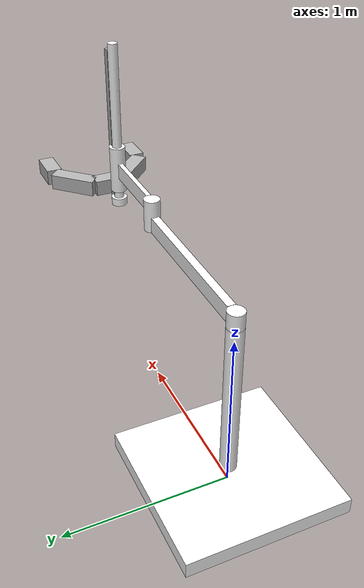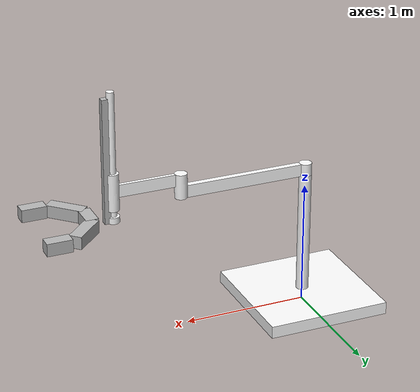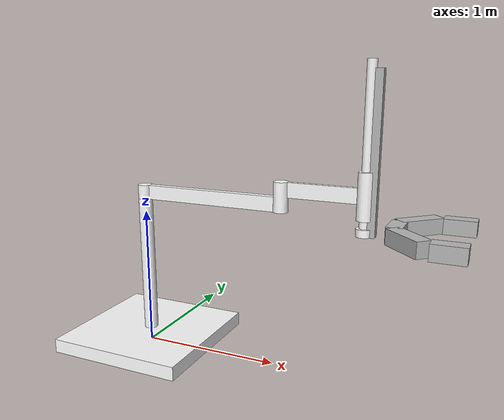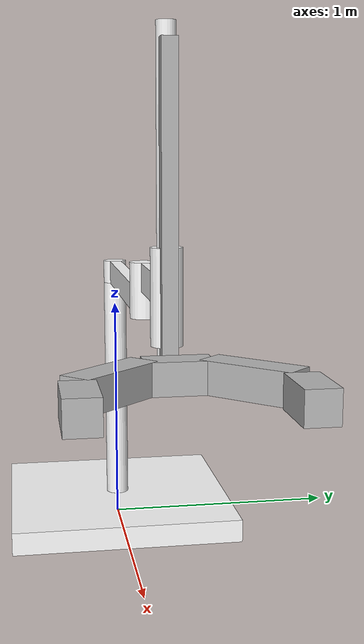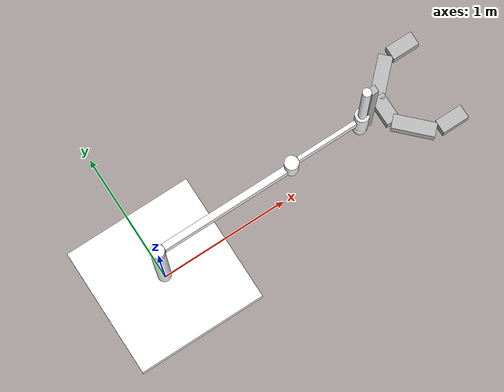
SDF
<?xml version="1.0" ?>
<sdf version="1.5">
  <model name="simple_arm_gripper">
    <include>
      <uri>model://simple_arm</uri>
    </include>
    <include>
      <uri>model://simple_gripper</uri>
      <pose>1.8 0 1 0 0 0</pose>
    </include>
    <plugin name="simple_arm_plugin" filename="libJointTrajectoryPlugin.so" />
    <joint name="arm_gripper_joint" type="revolute">
      <parent>simple_arm::arm_wrist_roll</parent>
      <child>simple_gripper::riser</child>
      <axis>
        <limit>
          <lower>0</lower>
          <upper>0</upper>
        </limit>
        <xyz>0 0 1</xyz>
        <use_parent_model_frame>true</use_parent_model_frame>
      </axis>
    </joint>
  </model>
</sdf>

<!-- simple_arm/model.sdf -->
<sdf version="1.5">
  <model name="simple_arm">
    <link name="arm_base">
      <inertial>
        <pose>0 0 0.00099 0 0 0</pose>
        <inertia>
          <ixx>1.11</ixx>
          <ixy>0</ixy>
          <ixz>0</ixz>
          <iyy>100.11</iyy>
          <iyz>0</iyz>
          <izz>1.01</izz>
        </inertia>
        <mass>101.0</mass>
      </inertial>
      <collision name="arm_base_geom">
        <pose>0 0 0.05 0 0 0</pose>
        <geometry>
          <box>
            <size>1.0 1.0 0.1</size>
          </box>
        </geometry>
      </collision>
      <visual name="arm_base_geom_visual">
        <pose>0 0 0.05 0 0 0</pose>
        <geometry>
          <box>
            <size>1.0 1.0 0.1</size>
          </box>
        </geometry>
        <material><diffuse>1 1 1 1</diffuse><specular>0.1 0.1 0.1 1</specular></material>
      </visual>
      <collision name="arm_base_geom_arm_trunk">
        <pose>0 0 0.6 0 0 0</pose>
        <geometry>
          <cylinder>
            <radius>0.05</radius>
            <length>1.0</length>
          </cylinder>
        </geometry>
      </collision>
      <visual name="arm_base_geom_arm_trunk_visual">
        <pose>0 0 0.6 0 0 0</pose>
        <geometry>
          <cylinder>
            <radius>0.05</radius>
            <length>1.0</length>
          </cylinder>
        </geometry>
        <material><diffuse>1 1 1 1</diffuse><specular>0.1 0.1 0.1 1</specular></material>
      </visual>
    </link>
    <link name="arm_shoulder_pan">
      <pose>0 0 1.1 0 0 0</pose>
      <inertial>
        <pose>0.045455 0 0 0 0 0</pose>
        <inertia>
          <ixx>0.011</ixx>
          <ixy>0</ixy>
          <ixz>0</ixz>
          <iyy>0.0225</iyy>
          <iyz>0</iyz>
          <izz>0.0135</izz>
        </inertia>
        <mass>1.1</mass>
      </inertial>
      <collision name="arm_shoulder_pan_geom">
        <pose>0 0 0.05 0 0 0</pose>
        <geometry>
          <cylinder>
            <radius>0.05</radius>
            <length>0.1</length>
          </cylinder>
        </geometry>
      </collision>
      <visual name="arm_shoulder_pan_geom_visual">
        <pose>0 0 0.05 0 0 0</pose>
        <geometry>
          <cylinder>
            <radius>0.05</radius>
            <length>0.1</length>
          </cylinder>
        </geometry>
        <material><diffuse>1 1 1 1</diffuse><specular>0.1 0.1 0.1 1</specular></material>
      </visual>
      <collision name="arm_shoulder_pan_geom_arm_shoulder">
        <pose>0.55 0 0.05 0 0 0</pose>
        <geometry>
          <box>
            <size>1.0 0.05 0.1</size>
          </box>
        </geometry>
      </collision>
      <visual name="arm_shoulder_pan_geom_arm_shoulder_visual">
        <pose>0.55 0 0.05 0 0 0</pose>
        <geometry>
          <box>
            <size>1.0 0.05 0.1</size>
          </box>
        </geometry>
        <material><diffuse>1 1 1 1</diffuse><specular>0.1 0.1 0.1 1</specular></material>
      </visual>
    </link>
    <link name="arm_elbow_pan">
      <pose>1.05 0 1.1 0 0 0</pose>
      <inertial>
        <pose>0.0875 0 0.083333 0 0 0</pose>
        <inertia>
          <ixx>0.031</ixx>
          <ixy>0</ixy>
          <ixz>0.005</ixz>
          <iyy>0.07275</iyy>
          <iyz>0</iyz>
          <izz>0.04475</izz>
        </inertia>
        <mass>1.2</mass>
      </inertial>
      <collision name="arm_elbow_pan_geom">
        <pose>0 0 0.1 0 0 0</pose>
        <geometry>
          <cylinder>
            <radius>0.05</radius>
            <length>0.2</length>
          </cylinder>
        </geometry>
      </collision>
      <visual name="arm_elbow_pan_geom_visual">
        <pose>0 0 0.1 0 0 0</pose>
        <geometry>
          <cylinder>
            <radius>0.05</radius>
            <length>0.2</length>
          </cylinder>
        </geometry>
        <material><diffuse>1 1 1 1</diffuse><specular>0.1 0.1 0.1 1</specular></material>
      </visual>
      <collision name="arm_elbow_pan_geom_arm_elbow">
        <pose>0.3 0 0.15 0 0 0</pose>
        <geometry>
          <box>
            <size>0.5 0.03 0.1</size>
          </box>
        </geometry>
      </collision>
      <visual name="arm_elbow_pan_geom_arm_elbow_visual">
        <pose>0.3 0 0.15 0 0 0</pose>
        <geometry>
          <box>
            <size>0.5 0.03 0.1</size>
          </box>
        </geometry>
        <material><diffuse>1 1 1 1</diffuse><specular>0.1 0.1 0.1 1</specular></material>
      </visual>
      <collision name="arm_elbow_pan_geom_arm_wrist">
        <pose>0.55 0 0.15 0 0 0</pose>
        <geometry>
          <cylinder>
            <radius>0.05</radius>
            <length>0.3</length>
          </cylinder>
        </geometry>
      </collision>
      <visual name="arm_elbow_pan_geom_arm_wrist_visual">
        <pose>0.55 0 0.15 0 0 0</pose>
        <geometry>
          <cylinder>
            <radius>0.05</radius>
            <length>0.3</length>
          </cylinder>
        </geometry>
        <material><diffuse>1 1 1 1</diffuse><specular>0.1 0.1 0.1 1</specular></material>
      </visual>
    </link>
    <link name="arm_wrist_lift">
      <pose>1.6 0 1.05 0 0 0</pose>
      <inertial>
        <pose>0 0 0 0 0 0</pose>
        <inertia>
          <ixx>0.01</ixx>
          <ixy>0</ixy>
          <ixz>0</ixz>
          <iyy>0.01</iyy>
          <iyz>0</iyz>
          <izz>0.001</izz>
        </inertia>
        <mass>0.1</mass>
      </inertial>
      <collision name="arm_wrist_lift_geom">
        <pose>0 0 0.5 0 0 0</pose>
        <geometry>
          <cylinder>
            <radius>0.03</radius>
            <length>1.0</length>
          </cylinder>
        </geometry>
      </collision>
      <visual name="arm_wrist_lift_geom_visual">
        <pose>0 0 0.5 0 0 0</pose>
        <geometry>
          <cylinder>
            <radius>0.03</radius>
            <length>1.0</length>
          </cylinder>
        </geometry>
        <material><diffuse>1 1 1 1</diffuse><specular>0.1 0.1 0.1 1</specular></material>
      </visual>
    </link>
    <link name="arm_wrist_roll">
      <pose>1.6 0 1.0 0 0 0</pose>
      <inertial>
        <pose>0 0 0 0 0 0</pose>
        <inertia>
          <ixx>0.01</ixx>
          <ixy>0</ixy>
          <ixz>0</ixz>
          <iyy>0.01</iyy>
          <iyz>0</iyz>
          <izz>0.001</izz>
        </inertia>
        <mass>0.1</mass>
      </inertial>
      <collision name="arm_wrist_roll_geom">
        <pose>0 0 0.025 0 0 0</pose>
        <geometry>
          <cylinder>
            <radius>0.05</radius>
            <length>0.05</length>
          </cylinder>
        </geometry>
      </collision>
      <visual name="arm_wrist_roll_geom_visual">
        <pose>0 0 0.025 0 0 0</pose>
        <geometry>
          <cylinder>
            <radius>0.05</radius>
            <length>0.05</length>
          </cylinder>
        </geometry>
        <material><diffuse>1 1 1 1</diffuse><specular>0.1 0.1 0.1 1</specular></material>
      </visual>
    </link>
    <joint name="arm_shoulder_pan_joint" type="revolute">
      <parent>arm_base</parent>
      <child>arm_shoulder_pan</child>
      <axis>
        <dynamics>
          <damping>1.000000</damping>
          <friction>0.000000</friction>
        </dynamics>
        <xyz>0 0 1</xyz>
        <use_parent_model_frame>true</use_parent_model_frame>
      </axis>
    </joint>
    <joint name="arm_elbow_pan_joint" type="revolute">
      <parent>arm_shoulder_pan</parent>
      <child>arm_elbow_pan</child>
      <axis>
        <dynamics>
          <damping>1.000000</damping>
          <friction>0.000000</friction>
        </dynamics>
        <xyz>0 0 1</xyz>
        <use_parent_model_frame>true</use_parent_model_frame>
      </axis>
    </joint>
    <joint name="arm_wrist_lift_joint" type="prismatic">
      <parent>arm_elbow_pan</parent>
      <child>arm_wrist_lift</child>
      <axis>
        <dynamics>
          <damping>1.000000</damping>
          <friction>0.000000</friction>
        </dynamics>
        <limit>
          <lower>-0.8</lower>
          <upper>0.1</upper>
        </limit>
        <xyz>0 0 1</xyz>
        <use_parent_model_frame>true</use_parent_model_frame>
      </axis>
    </joint>
    <joint name="arm_wrist_roll_joint" type="revolute">
      <parent>arm_wrist_lift</parent>
      <child>arm_wrist_roll</child>
      <axis>
        <dynamics>
          <damping>1.000000</damping>
          <friction>0.000000</friction>
        </dynamics>
        <limit>
          <lower>-2.999994</lower>
          <upper>2.999994</upper>
        </limit>
        <xyz>0 0 1</xyz>
        <use_parent_model_frame>true</use_parent_model_frame>
      </axis>
    </joint>
  </model>
</sdf>

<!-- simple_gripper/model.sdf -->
<sdf version="1.5">
  <model name="simple_gripper">
    <link name="riser">
      <pose>-0.15 0.0 0.5 0 0 0</pose>
      <inertial>
        <mass>10</mass>
      </inertial>
      <collision name="collision">
        <geometry>
          <box>
            <size>0.05 0.05 1.0</size>
          </box>
        </geometry>
        <surface>
          <contact>
            <ode>
              <max_vel>0.0</max_vel>
            </ode>
          </contact>
        </surface>
      </collision>
      <visual name="visual">
        <geometry>
          <box>
            <size>0.05 0.05 1.0</size>
          </box>
        </geometry>
      </visual>
    </link>
    <link name="palm">
      <pose>0.0 0.0 0.05 0 0 0</pose>
      <inertial>
        <mass>0.5</mass>
      </inertial>
      <collision name="collision">
        <geometry>
          <box>
            <size>0.1 0.2 0.1</size>
          </box>
        </geometry>
        <surface>
          <contact>
            <ode>
              <max_vel>0.0</max_vel>
            </ode>
          </contact>
        </surface>
      </collision>
      <visual name="visual">
        <geometry>
          <box>
            <size>0.1 0.2 0.1</size>
          </box>
        </geometry>
      </visual>
    </link>
    <link name="left_finger">
      <pose>0.1 0.2 0.05 0 0 -0.78539</pose>
      <inertial>
        <mass>0.1</mass>
      </inertial>
      <collision name="collision">
        <geometry>
          <box>
            <size>0.1 0.3 0.1</size>
          </box>
        </geometry>
        <surface>
          <friction>
            <ode>
              <mu>0.1</mu>
              <mu2>0</mu2>
            </ode>
          </friction>
          <contact>
            <ode>
              <max_vel>0.0</max_vel>
            </ode>
          </contact>
        </surface>
      </collision>
      <visual name="visual">
        <geometry>
          <box>
            <size>0.1 0.3 0.1</size>
          </box>
        </geometry>
      </visual>
    </link>
    <link name="left_finger_tip">
      <pose>0.336 0.3 0.05 0 0 1.5707</pose>
      <inertial>
        <mass>0.5</mass>
      </inertial>
      <collision name="collision">
        <geometry>
          <box>
            <size>0.1 0.2 0.1</size>
          </box>
        </geometry>
        <surface>
          <friction>
            <ode>
              <mu>.1</mu>
              <mu2>0</mu2>
            </ode>
          </friction>
          <contact>
            <ode>
              <max_vel>0.0</max_vel>
            </ode>
          </contact>
        </surface>
      </collision>
      <visual name="visual">
        <geometry>
          <box>
            <size>0.1 0.2 0.1</size>
          </box>
        </geometry>
      </visual>
    </link>
    <link name="right_finger">
      <pose>0.1 -0.2 0.05 0 0 .78539</pose>
      <inertial>
        <mass>0.1</mass>
      </inertial>
      <collision name="collision">
        <geometry>
          <box>
            <size>0.1 0.3 0.1</size>
          </box>
        </geometry>
        <surface>
          <friction>
            <ode>
              <mu>0.1</mu>
              <mu2>0</mu2>
            </ode>
          </friction>
          <contact>
            <ode>
              <max_vel>0.0</max_vel>
            </ode>
          </contact>
        </surface>
      </collision>
      <visual name="visual">
        <geometry>
          <box>
            <size>0.1 0.3 0.1</size>
          </box>
        </geometry>
      </visual>
    </link>
    <link name="right_finger_tip">
      <pose>0.336 -0.3 0.05 0 0 1.5707</pose>
      <inertial>
        <mass>0.1</mass>
      </inertial>
      <collision name="collision">
        <geometry>
          <box>
            <size>0.1 0.2 0.1</size>
          </box>
        </geometry>
        <surface>
          <friction>
            <ode>
              <mu>0.1</mu>
              <mu2>0</mu2>
            </ode>
          </friction>
          <contact>
            <ode>
              <max_vel>0.0</max_vel>
            </ode>
          </contact>
        </surface>
      </collision>
      <visual name="visual">
        <geometry>
          <box>
            <size>0.1 0.2 0.1</size>
          </box>
        </geometry>
      </visual>
    </link>
    <joint name="palm_left_finger" type="revolute">
      <pose>0 -0.15 0 0 0 0</pose>
      <child>left_finger</child>
      <parent>palm</parent>
      <axis>
        <limit>
          <lower>-0.8</lower>
          <upper>0.8</upper>
        </limit>
        <xyz>0 0 1</xyz>
        <use_parent_model_frame>true</use_parent_model_frame>
      </axis>
    </joint>
    <joint name="left_finger_tip" type="revolute">
      <pose>0 0.1 0 0 0 0</pose>
      <child>left_finger_tip</child>
      <parent>left_finger</parent>
      <axis>
        <limit>
          <lower>-0.8</lower>
          <upper>0.8</upper>
        </limit>
        <xyz>0 0 1</xyz>
        <use_parent_model_frame>true</use_parent_model_frame>
      </axis>
    </joint>
    <joint name="palm_right_finger" type="revolute">
      <pose>0 0.15 0 0 0 0</pose>
      <child>right_finger</child>
      <parent>palm</parent>
      <axis>
        <limit>
          <lower>-0.8</lower>
          <upper>0.8</upper>
        </limit>
        <xyz>0 0 1</xyz>
        <use_parent_model_frame>true</use_parent_model_frame>
      </axis>
    </joint>
    <joint name="right_finger_tip" type="revolute">
      <pose>0 0.1 0 0 0 0</pose>
      <child>right_finger_tip</child>
      <parent>right_finger</parent>
      <axis>
        <limit>
          <lower>-0.8</lower>
          <upper>0.8</upper>
        </limit>
        <xyz>0 0 1</xyz>
        <use_parent_model_frame>true</use_parent_model_frame>
      </axis>
    </joint>
    <joint name="palm_riser" type="prismatic">
      <child>palm</child>
      <parent>riser</parent>
      <axis>
        <limit>
          <lower>0</lower>
          <upper>0.9</upper>
        </limit>
        <xyz>0 0 1</xyz>
        <use_parent_model_frame>true</use_parent_model_frame>
      </axis>
    </joint>
    <gripper name="simple_gripper">
      <grasp_check>
        <detach_steps>40</detach_steps>
        <attach_steps>20</attach_steps>
        <min_contact_count>2</min_contact_count>
      </grasp_check>
      <gripper_link>right_finger</gripper_link>
      <gripper_link>right_finger_tip</gripper_link>
      <gripper_link>left_finger</gripper_link>
      <gripper_link>left_finger_tip</gripper_link>
      <palm_link>palm</palm_link>
    </gripper>
  </model>
</sdf>
